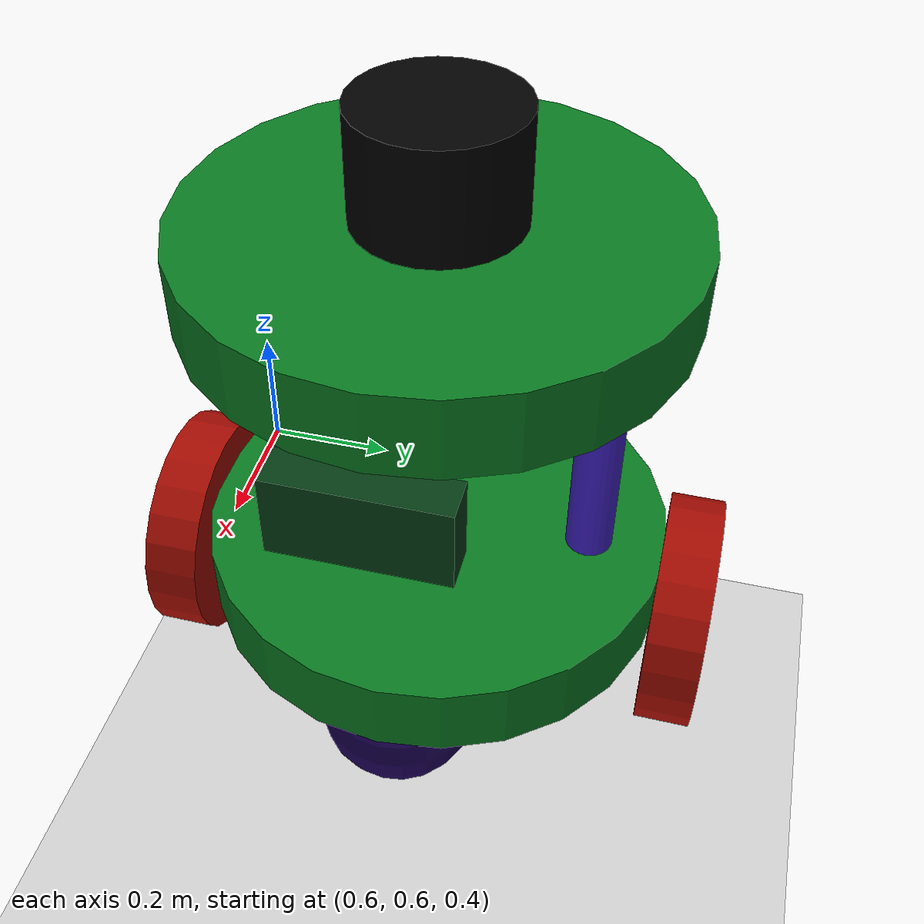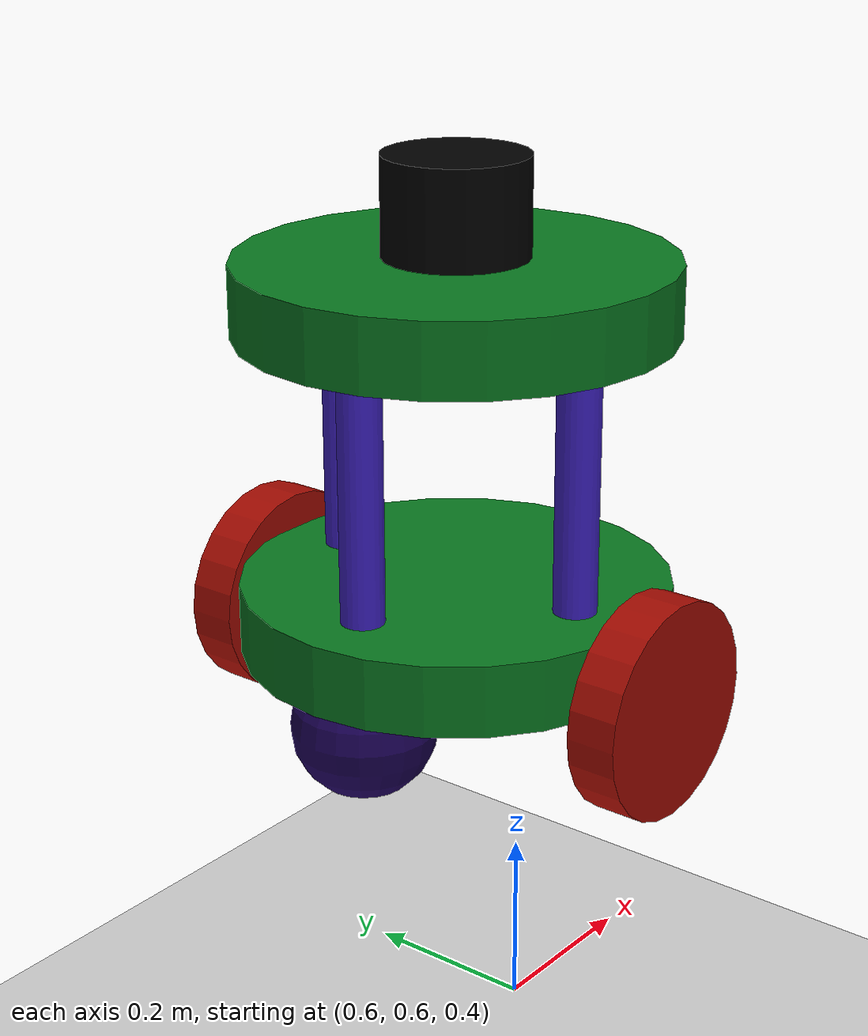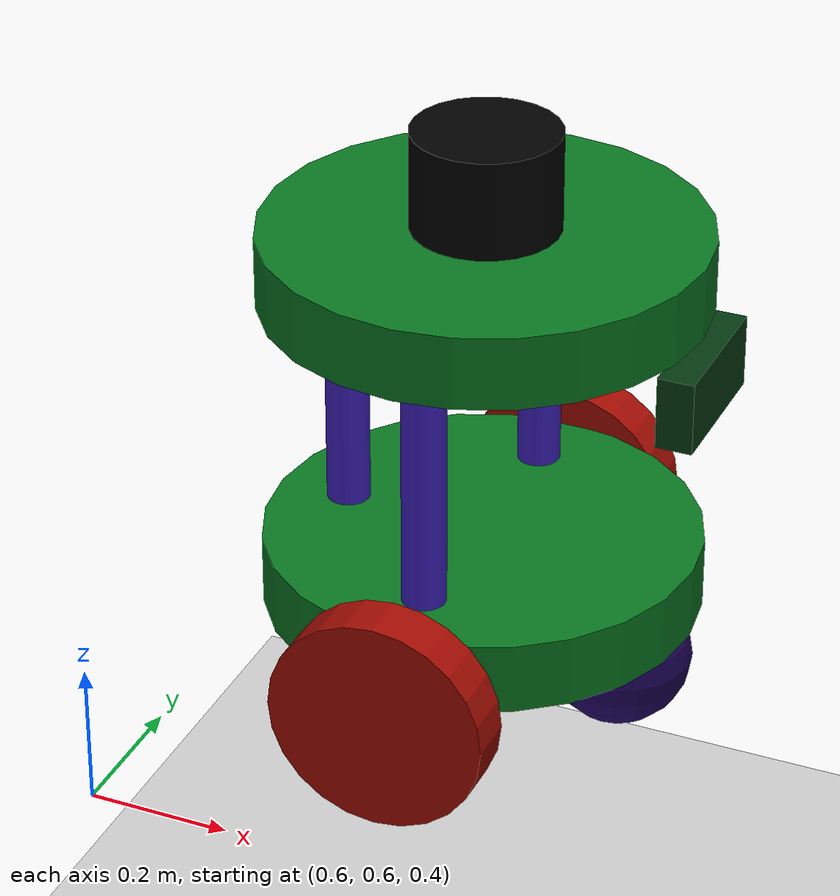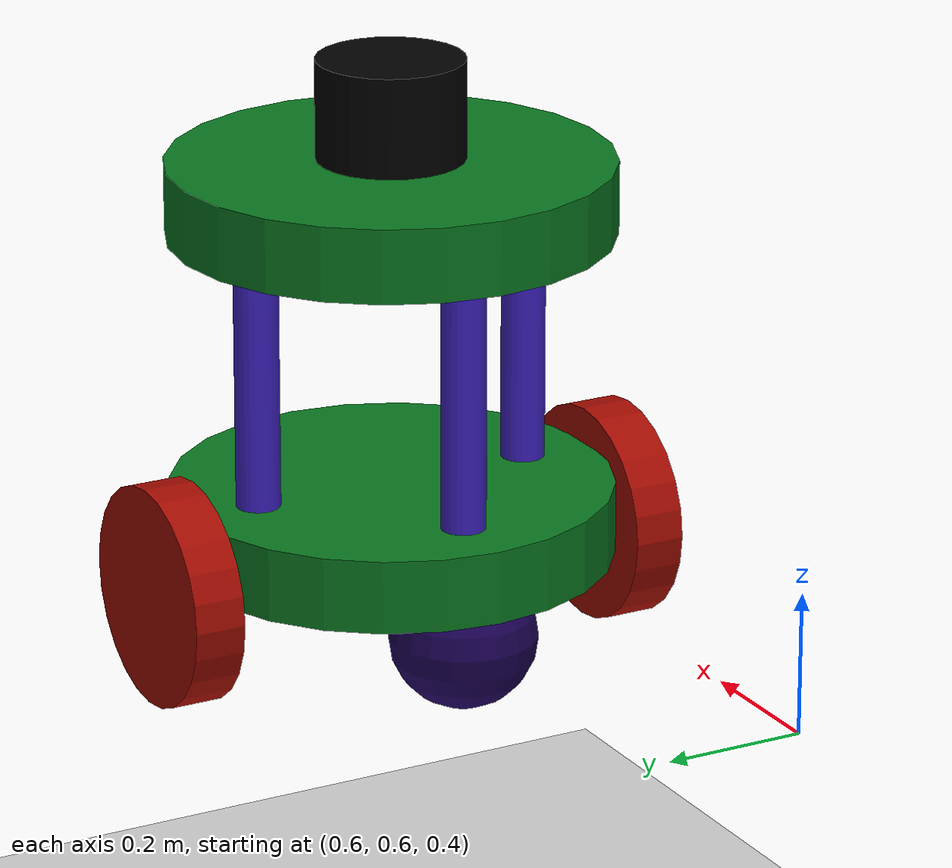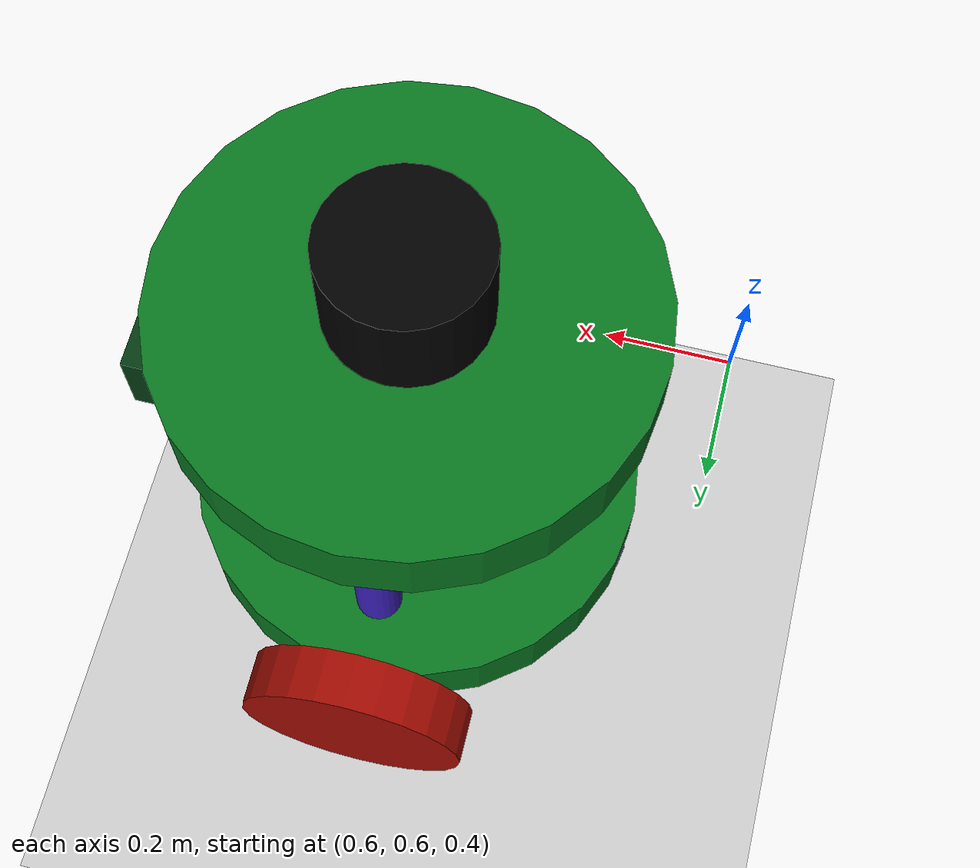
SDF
<?xml version="1.0" ?>
<sdf version="1.10">

    <world name="beetlebot_world">

        <physics name="1ms" type="ignored">
            <max_step_size>0.001</max_step_size>
            <real_time_factor>1.0</real_time_factor>
        </physics>

        <plugin
            filename="gz-sim-physics-system"
            name="gz::sim::systems::Physics">
        </plugin>

        <plugin
            filename="gz-sim-user-commands-system"
            name="gz::sim::systems::UserCommands">
        </plugin>

        <plugin
            filename="gz-sim-scene-broadcaster-system"
            name="gz::sim::systems::SceneBroadcaster">
        </plugin>

    <!-- define custom gui plugins to the world -->

    <!-- add robot sensors plugins to the world -->

        <!-- add imu plugin to the world -->
        <plugin filename="gz-sim-imu-system"
            name="gz::sim::systems::Imu">
        </plugin>

         <!-- add lidar plugin to the world -->
        <plugin
            filename="gz-sim-sensors-system"
            name="gz::sim::systems::Sensors">
            <render_engine>ogre2</render_engine>
        </plugin>

        <light type="directional" name="sun">
            <cast_shadows>true</cast_shadows>
            <pose>0 0 10 0 0 0</pose>
            <diffuse>0.8 0.8 0.8 1</diffuse>
            <specular>0.2 0.2 0.2 1</specular>
            <attenuation>
                <range>1000</range>
                <constant>0.9</constant>
                <linear>0.01</linear>
                <quadratic>0.001</quadratic>
            </attenuation>
            <direction>-0.5 0.1 -0.9</direction>
        </light>

        <model name="ground_plane">
            <static>true</static>
            <link name="link">
                <collision name="collision">
                    <geometry>
                        <plane>
                            <normal>0 0 1</normal>
                            <size>100 100</size>
                        </plane>
                    </geometry>
                    <surface>
                        <friction>
                            <ode>
                                <mu>100</mu>
                                <mu2>50</mu2>
                            </ode>
                        </friction>
                    </surface>
                </collision>
                <visual name="visual">
                    <cast_shadows>false</cast_shadows>
                    <geometry>
                        <plane>
                            <normal>0 0 1</normal>
                            <size>100 100</size>
                        </plane>
                    </geometry>
                    <material>
                        <script>
                            <uri>file://media/materials/scripts/gazebo.material</uri>
                            <name>Gazebo/Grey</name>
                        </script>
                    </material>
                </visual>
            </link>
        </model>

        <!--  movment plugins to control robot using gzsim teleop with keyboard (No ROS) -->

        <!-- Moving Forward-->
        <plugin filename="gz-sim-triggered-publisher-system"
                name="gz::sim::systems::TriggeredPublisher">
            <input type="gz.msgs.Int32" topic="/keyboard/keypress">
                <match field="data">16777235</match>
            </input>
            <output type="gz.msgs.Twist" topic="/cmd_vel">
                linear: {x: 0.5}, angular: {z: 0.0}
            </output>
        </plugin>

        <!-- Moving Backward-->
        <plugin filename="gz-sim-triggered-publisher-system"
                name="gz::sim::systems::TriggeredPublisher">
            <input type="gz.msgs.Int32" topic="/keyboard/keypress">
                <match field="data">16777237</match>
            </input>
            <output type="gz.msgs.Twist" topic="/cmd_vel">
                linear: {x: -0.5}, angular: {z: 0.0}
            </output>
        </plugin>

        <!-- Moving Right-->
        <plugin filename="gz-sim-triggered-publisher-system"
                name="gz::sim::systems::TriggeredPublisher">
            <input type="gz.msgs.Int32" topic="/keyboard/keypress">
                <match field="data">16777236</match>
            </input>
            <output type="gz.msgs.Twist" topic="/cmd_vel">
                linear: {x: 0.0}, angular: {z: -0.5}
            </output>
        </plugin>

        <!-- Moving Left-->
        <plugin filename="gz-sim-triggered-publisher-system"
                name="gz::sim::systems::TriggeredPublisher">
            <input type="gz.msgs.Int32" topic="/keyboard/keypress">
                <match field="data">16777234</match>
            </input>
            <output type="gz.msgs.Twist" topic="/cmd_vel">
                linear: {x: 0.0}, angular: {z: 0.5}
            </output>
        </plugin>

        <!-- Stop the robot-->
        <plugin filename="gz-sim-triggered-publisher-system"
                name="gz::sim::systems::TriggeredPublisher">
            <input type="gz.msgs.Int32" topic="/keyboard/keypress">
                <match field="data">75</match>
            </input>
            <output type="gz.msgs.Twist" topic="/cmd_vel">
                linear: {x: 0.0}, angular: {z: 0.0}
            </output>
        </plugin>

        <!-- Include a "beetlebot" robot inside beetlebot_1 model as nested model  -->

        <model name="beetlebot_1">

            <self_collide>true</self_collide>
            <pose>1 1 0.35 0 0 0</pose>
            <include >
                <uri>filename://beetlebot/model.sdf</uri>
            </include>

        </model>

    </world>
</sdf>

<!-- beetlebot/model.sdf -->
<sdf version="1.8">
        <model name="beetlebot" >
            <link name="beetlebot">
                <pose relative_to='__model__'>0 0 0.0 0 0 0</pose>
            </link>

            <joint name="footprint_to_base" type="fixed">
                <parent>beetlebot</parent>
                <child>base_link</child>
            </joint>

            <link name="base_link">
                <pose relative_to='beetlebot'>0 0 0.3 0 0 0</pose>
                <visual name='base_link visual'>
                    <pose>0 0 0 0 0 0</pose>
                    <geometry>
                        <cylinder>
                            <radius>0.3</radius>
                            <length>0.1</length>
                        </cylinder>
                    </geometry>
                    <material>
                        <ambient>0.033104766565152086 0.46778379610254284 0.12477181755144427 1</ambient>
                        <diffuse>0.033104766565152086 0.46778379610254284 0.12477181755144427 1</diffuse>
                        <specular>0.1 0.1 0.1 1</specular>
                        <emissive>0 0 0 1</emissive>
                    </material>
                </visual>
                <collision name='base_link collision'>
                    <pose>0 0 0 0 0 0</pose>
                    <geometry>
                        <cylinder>
                            <radius>0.3</radius>
                            <length>0.1</length>
                        </cylinder>
                    </geometry>
                </collision>
                <inertial>
                    <mass>1</mass>
                    <inertia>
                        <ixx>0.3333333333333333</ixx>
                        <ixy>0</ixy>
                        <ixz>0</ixz>
                        <iyy>0.5</iyy>
                        <iyz>0</iyz>
                        <izz>0.3333333333333333</izz>
                    </inertia>
                </inertial>
            </link>

            <!-- right wheel link -->
            <link name="wheel_right">
                <pose relative_to='base_link'>-0.0 -0.33 -0.05 1.5707963267948963 0 0</pose>
                <visual name='wheel_right visual'>
                    <pose>0 0 0 0 0 0</pose>
                    <geometry>
                        <cylinder>
                            <radius>0.15</radius>
                            <length>0.07</length>
                        </cylinder>
                    </geometry>
                    <material>
                        <ambient>0.6375968739867731 0.04373502925049377 0.008023192982520563 1</ambient>
                        <diffuse>0.6375968739867731 0.04373502925049377 0.008023192982520563 1</diffuse>
                        <specular>0.1 0.1 0.1 1</specular>
                        <emissive>0 0 0 1</emissive>
                    </material>
                </visual>
                <collision name='wheel_right collision'>
                    <pose>0 0 0 0 0 0</pose>
                    <geometry>
                        <cylinder>
                            <radius>0.15</radius>
                            <length>0.07</length>
                        </cylinder>
                    </geometry>
                </collision>
                <inertial>
                    <mass>1</mass>
                    <inertia>
                        <ixx>0.3333333333333333</ixx>
                        <ixy>0</ixy>
                        <ixz>0</ixz>
                        <iyy>0.5</iyy>
                        <iyz>0</iyz>
                        <izz>0.3333333333333333</izz>
                    </inertia>
                </inertial>
            </link>

            <!-- right wheel joint -->
            <joint name="base_link_to_wheel_right" type="revolute">
                <parent>base_link</parent>
                <child>wheel_right</child>
                <axis>
                    <xyz expressed_in='__model__'>0 1 0</xyz>
                    <limit>
                        <lower>-1.79769e+308</lower>
                        <upper>1.79769e+308</upper>
                    </limit>
                </axis>
            </joint>

            <!-- left wheel link -->
            <link name="wheel_left">
                <pose relative_to='base_link'>0 0.33 -0.05 1.5707963267948963 0 0</pose>
                <visual name='wheel_left visual'>
                    <pose>0 0 0 0 0 0</pose>
                    <geometry>
                        <cylinder>
                            <radius>0.15</radius>
                            <length>0.07</length>
                        </cylinder>
                    </geometry>
                    <material>
                        <ambient>0.6375968739867731 0.04373502925049377 0.008023192982520563 1</ambient>
                        <diffuse>0.6375968739867731 0.04373502925049377 0.008023192982520563 1</diffuse>
                        <specular>0.1 0.1 0.1 1</specular>
                        <emissive>0 0 0 1</emissive>
                    </material>
                </visual>
                <collision name='wheel_left collision'>
                    <pose>0 0 0 0 0 0</pose>
                    <geometry>
                        <cylinder>
                            <radius>0.15</radius>
                            <length>0.07</length>
                        </cylinder>
                    </geometry>
                </collision>
                <inertial>
                    <mass>1</mass>
                    <inertia>
                        <ixx>0.3333333333333333</ixx>
                        <ixy>0</ixy>
                        <ixz>0</ixz>
                        <iyy>0.5</iyy>
                        <iyz>0</iyz>
                        <izz>0.3333333333333333</izz>
                    </inertia>
                </inertial>
            </link>

            <!-- left wheel joint -->
            <joint name="base_link_to_wheel_left" type="revolute">
                <parent>base_link</parent>
                <child>wheel_left</child>
                <axis>
                    <xyz expressed_in='__model__'>0 1 0</xyz>  <!-- axis of rotation have to be expressed_in model -->
                    <limit>
                        <lower>-1.79769e+308</lower>    <!--negative infinity-->
                        <upper>1.79769e+308</upper>     <!--positive infinity-->
                    </limit>
                </axis>
            </joint>

                <!-- top_base link -->

            <link name="top_base">
                <!-- Pose relative to base_link -->
                <pose relative_to='base_link'>0 0 0.45 0 0 0</pose>

                <!-- Visual representation of top_base -->
                <visual name='top_base visual'>
                    <pose>0 0 0 0 0 0</pose>
                    <geometry>
                        <cylinder>
                            <radius>0.3</radius>
                            <length>0.1</length>
                        </cylinder>
                    </geometry>
                    <material>
                        <ambient>0.033104766565152086 0.46778379610254284 0.12477181755144427 1</ambient>
                        <diffuse>0.033104766565152086 0.46778379610254284 0.12477181755144427 1</diffuse>
                        <specular>0.1 0.1 0.1 1</specular>
                        <emissive>0 0 0 1</emissive>
                    </material>
                </visual>

                <!-- Collision properties for top_base -->
                <collision name='top_base collision'>
                    <pose>0 0 0 0 0 0</pose>
                    <geometry>
                        <cylinder>
                            <radius>0.3</radius>
                            <length>0.1</length>
                        </cylinder>
                    </geometry>
                </collision>

                <!-- Inertial properties of top_base -->
                <inertial>
                    <mass>1</mass>
                    <inertia>
                        <ixx>0.3333333333333333</ixx>
                        <ixy>0</ixy>
                        <ixz>0</ixz>
                        <iyy>0.5</iyy>
                        <iyz>0</iyz>
                        <izz>0.3333333333333333</izz>
                    </inertia>
                </inertial>
            </link>

            <!-- top_base joint -->
            <joint name="base_link_to_top_base" type="fixed">
                <parent>base_link</parent>
                <child>top_base</child>
            </joint>

            <frame name="front_caster_frame" attached_to='base_link'>
                <pose>0.2 0 -0.1 0 0 0</pose>
            </frame>

            <!-- front_caster link -->
            <link name="front_caster">

                <pose relative_to='front_caster_frame'/>  <!-- pose relative to front_caster_frame -->
                <!-- Visual representation of front_caster -->
                <visual name='front_caster visual'>
                    <pose>0 0 0 0 0 0</pose>
                    <geometry>
                        <sphere>
                            <radius>0.1</radius>
                        </sphere>
                    </geometry>
                    <material>
                        <ambient>0.10702310296918527 0.0069954101845983935 0.3371636150376657 1</ambient>
                        <diffuse>0.10702310296918527 0.0069954101845983935 0.3371636150376657 1</diffuse>
                        <specular>0.1 0.1 0.1 1</specular>
                        <emissive>0 0 0 1</emissive>
                    </material>
                </visual>

                <!-- Collision properties for front_caster -->
                <collision name='front_caster collision'>
                    <pose>0 0 0 0 0 0</pose>
                    <geometry>
                        <sphere>
                            <radius>0.1</radius>
                        </sphere>
                    </geometry>
                </collision>

                <!-- Inertial properties of front_caster -->
                <inertial>
                    <mass>1</mass>
                    <inertia>
                        <ixx>0.4</ixx>
                        <ixy>0</ixy>
                        <ixz>0</ixz>
                        <iyy>0.4</iyy>
                        <iyz>0</iyz>
                        <izz>0.4</izz>
                    </inertia>
                </inertial>
            </link>

            <!-- front_caster joint -->
            <joint name="base_link_to_front_caster" type="ball">
                <parent>base_link</parent>
                <child>front_caster</child>
            </joint>

            <!-- rear_caster link -->
            <link name="rear_caster">
                <!-- Pose relative to base_link -->
                <pose relative_to='base_link'>-0.2 0 -0.1 0 0 0</pose>

                <!-- Visual representation of rear_caster -->
                <visual name='rear_caster visual'>
                    <pose>0 0 0 0 0 0</pose>
                    <geometry>
                        <sphere>
                            <radius>0.1</radius>
                        </sphere>
                    </geometry>
                    <material>
                        <ambient>0.10702310296918527 0.0069954101845983935 0.3371636150376657 1</ambient>
                        <diffuse>0.10702310296918527 0.0069954101845983935 0.3371636150376657 1</diffuse>
                        <specular>0.1 0.1 0.1 1</specular>
                        <emissive>0 0 0 1</emissive>
                    </material>
                </visual>

                <!-- Collision properties for rear_caster -->
                <collision name='rear_caster collision'>
                    <pose>0 0 0 0 0 0</pose>
                    <geometry>
                        <sphere>
                            <radius>0.1</radius>
                        </sphere>
                    </geometry>
                </collision>

                <!-- Inertial properties of rear_caster -->
                <inertial>
                    <mass>1</mass>
                    <inertia>
                        <ixx>0.4</ixx>
                        <ixy>0</ixy>
                        <ixz>0</ixz>
                        <iyy>0.4</iyy>
                        <iyz>0</iyz>
                        <izz>0.4</izz>
                    </inertia>
                </inertial>
            </link>

            <!-- rear_caster joint -->
            <joint name="base_link_to_rear_caster" type="ball">
                <parent>base_link</parent>
                <child>rear_caster</child>
            </joint>

            <!-- right_bar link -->
            <link name="right_bar">
                <!-- Pose relative to base_link -->
                <pose relative_to='base_link'>0 0.2 0.2058808723746403 0 0 0</pose>

                <!-- Visual representation of right_bar -->
                <visual name='right_bar visual'>
                    <pose>0 0 0 0 0 0</pose>
                    <geometry>
                        <cylinder>
                            <radius>0.03</radius>
                            <length>0.5</length>
                        </cylinder>
                    </geometry>
                    <material>
                        <ambient>0.23839757380151394 0.12743768042608497 0.7529422167708612 1</ambient>
                        <diffuse>0.23839757380151394 0.12743768042608497 0.7529422167708612 1</diffuse>
                        <specular>0.1 0.1 0.1 1</specular>
                        <emissive>0 0 0 1</emissive>
                    </material>
                </visual>

                <!-- Collision properties for right_bar -->
                <collision name='right_bar collision'>
                    <pose>0 0 0 0 0 0</pose>
                    <geometry>
                        <cylinder>
                            <radius>0.03</radius>
                            <length>0.5</length>
                        </cylinder>
                    </geometry>
                </collision>

                <!-- Inertial properties of right_bar -->
                <inertial>
                    <mass>1</mass>
                    <inertia>
                        <ixx>0.3333333333333333</ixx>
                        <ixy>0</ixy>
                        <ixz>0</ixz>
                        <iyy>0.5</iyy>
                        <iyz>0</iyz>
                        <izz>0.3333333333333333</izz>
                    </inertia>
                </inertial>
            </link>

            <!-- right_bar joint -->
            <joint name="base_link_to_right_bar" type="fixed">
                <parent>base_link</parent>
                <child>right_bar</child>
            </joint>

            <!-- left_bar link -->

            <link name="left_bar">
                <!-- Pose relative to base_link -->
                <pose relative_to='base_link'>0 -0.2 0.2058808723746403 0 0 0</pose>

                <!-- Visual representation of left_bar -->
                <visual name='left_bar visual'>
                    <pose>0 0 0 0 0 0</pose>
                    <geometry>
                        <cylinder>
                            <radius>0.03</radius>
                            <length>0.5</length>
                        </cylinder>
                    </geometry>
                    <material>
                        <ambient>0.23839757380151394 0.12743768042608497 0.7529422167708612 1</ambient>
                        <diffuse>0.23839757380151394 0.12743768042608497 0.7529422167708612 1</diffuse>
                        <specular>0.1 0.1 0.1 1</specular>
                        <emissive>0 0 0 1</emissive>
                    </material>
                </visual>

                <!-- Collision properties for left_bar -->
                <collision name='left_bar collision'>
                    <pose>0 0 0 0 0 0</pose>
                    <geometry>
                        <cylinder>
                            <radius>0.03</radius>
                            <length>0.5</length>
                        </cylinder>
                    </geometry>
                </collision>

                <!-- Inertial properties of left_bar -->
                <inertial>
                    <mass>1</mass>
                    <inertia>
                        <ixx>0.3333333333333333</ixx>
                        <ixy>0</ixy>
                        <ixz>0</ixz>
                        <iyy>0.5</iyy>
                        <iyz>0</iyz>
                        <izz>0.3333333333333333</izz>
                    </inertia>
                </inertial>

            </link>

            <!-- left_bar joint -->

            <joint name="base_link_to_left_bar" type="fixed">
                <parent>base_link</parent>
                <child>left_bar</child>
            </joint>

            <!-- rear_bar link -->
            <link name="rear_bar">
                <!-- Pose relative to base_link -->
                <pose relative_to='base_link'> -0.2 0 0.2058808723746403 0 0 0</pose>

                <!-- Visual representation of rear_bar -->
                <visual name='rear_bar visual'>
                    <pose>0 0 0 0 0 0</pose>
                    <geometry>
                        <cylinder>
                            <radius>0.03</radius>
                            <length>0.5</length>
                        </cylinder>
                    </geometry>
                    <material>
                        <ambient>0.23839757380151394 0.12743768042608497 0.7529422167708612 1</ambient>
                        <diffuse>0.23839757380151394 0.12743768042608497 0.7529422167708612 1</diffuse>
                        <specular>0.1 0.1 0.1 1</specular>
                        <emissive>0 0 0 1</emissive>
                    </material>
                </visual>

                <!-- Collision properties for rear_bar -->
                <collision name='rear_bar collision'>
                    <pose>0 0 0 0 0 0</pose>
                    <geometry>
                        <cylinder>
                            <radius>0.03</radius>
                            <length>0.5</length>
                        </cylinder>
                    </geometry>
                </collision>

                <!-- Inertial properties of rear_bar -->
                <inertial>
                    <mass>1</mass>
                    <inertia>
                        <ixx>0.3333333333333333</ixx>
                        <ixy>0</ixy>
                        <ixz>0</ixz>
                        <iyy>0.5</iyy>
                        <iyz>0</iyz>
                        <izz>0.3333333333333333</izz>
                    </inertia>
                </inertial>
            </link>

            <!-- rear_bar joint -->
            <joint name="base_link_to_rear_bar" type="fixed">
                <parent>base_link</parent>
                <child>rear_bar</child>
            </joint>

            <link name="lidar">
                <pose relative_to='base_link'>0 0 0.57 0 0 0</pose>
                <visual name='lidar visual'>
                    <pose>0 0 0 0 0 0</pose>
                    <geometry>
                        <cylinder>
                            <radius>0.1</radius>
                            <length>0.13538975482266932</length>
                        </cylinder>
                    </geometry>
                    <material>
                        <ambient>0 0 0 1</ambient>
                        <diffuse>0 0 0 1</diffuse>
                        <specular>0.1 0.1 0.1 1</specular>
                        <emissive>0 0 0 1</emissive>
                    </material>
                </visual>
                <collision name='lidar collision'>
                    <pose>0 0 0 0 0 0</pose>
                    <geometry>
                        <cylinder>
                            <radius>0.1</radius>
                            <length>0.13538975482266932</length>
                        </cylinder>
                    </geometry>
                </collision>
                <inertial>
                    <mass>1</mass>
                    <inertia>
                        <ixx>0.3333333333333333</ixx>
                        <ixy>0</ixy>
                        <ixz>0</ixz>
                        <iyy>0.5</iyy>
                        <iyz>0</iyz>
                        <izz>0.3333333333333333</izz>
                    </inertia>
                </inertial>
                <sensor name='rp_lidar' type='gpu_lidar'>"
                    <pose relative_to='lidar'>0 0 0 0 0 0</pose>
                    <always_on>1</always_on>
                    <visualize>true</visualize>
                    <topic>lidar</topic>
                    <gz_frame_id>beetlebot/lidar</gz_frame_id>
                    <update_rate>10</update_rate>
                    <ray>
                        <scan>
                            <horizontal>
                                <samples>640</samples>
                                <resolution>1</resolution>
                                <min_angle>-6.28319</min_angle>
                                <max_angle>6.28319</max_angle>
                            </horizontal>
                            <vertical>
                                <samples>1</samples>
                                <resolution>0.01</resolution>
                                <min_angle>0</min_angle>
                                <max_angle>0</max_angle>
                            </vertical>
                        </scan>
                        <range>
                            <min>0.08</min>
                            <max>10.0</max>
                            <resolution>0.01</resolution>
                        </range>
                    </ray>
                </sensor>
            </link>

            <joint name="base_link_to_lidar" type="fixed">
                <parent>base_link</parent>
                <child>lidar</child>
            </joint>

            <link name="camera">
                <pose relative_to='base_link'>0.3 0 0.34 0 0 0</pose>
                <visual name='camera visual'>
                    <pose>0 0 0 0 0 0</pose>
                    <geometry>
                        <box>
                            <size>0.05 0.2 0.1</size>
                        </box>
                    </geometry>
                    <material>
                        <ambient>0.015996293361446288 0.22696587349938613 0.07036009568874305 1</ambient>
                        <diffuse>0.015996293361446288 0.22696587349938613 0.07036009568874305 1</diffuse>
                        <specular>0.1 0.1 0.1 1</specular>
                        <emissive>0 0 0 1</emissive>
                    </material>
                </visual>
                <collision name='camera collision'>
                    <pose>0.0 0 0 0.0 0 0</pose>
                    <geometry>
                        <box>
                            <size>0.05 0.2 0.1</size>
                        </box>
                    </geometry>
                </collision>
                <inertial>
                    <mass>1</mass>
                    <inertia>
                        <ixx>0.16666666666666666</ixx>
                        <ixy>0</ixy>
                        <ixz>0</ixz>
                        <iyy>0.16666666666666666</iyy>
                        <iyz>0</iyz>
                        <izz>0.16666666666666666</izz>
                    </inertia>
                </inertial>
                <sensor name="camera" type="camera">
                    <always_on>true</always_on>
                    <visualize>true</visualize>
                    <update_rate>30</update_rate>
                    <topic>camera/image_raw</topic>
                    <gz_frame_id>beetlebot/camera</gz_frame_id>
                    <camera name="intel_realsense_r200">
                    <camera_info_topic>camera/camera_info</camera_info_topic>
                    <horizontal_fov>1.02974</horizontal_fov>
                    <image>
                        <width>1920</width>
                        <height>1080</height>
                        <format>R8G8B8</format>
                    </image>
                    <clip>
                        <near>0.02</near>
                        <far>300</far>
                    </clip>
                    <noise>
                        <type>gaussian</type>
                        <mean>0.0</mean>
                        <stddev>0.007</stddev>
                    </noise>
                    </camera>
                </sensor>

                <sensor name="depth_camera" type="depth">
                    <always_on>true</always_on>
                    <visualize>true</visualize>
                    <update_rate>30</update_rate>
                    <topic>camera/depth/image_raw</topic>
                    <gz_frame_id>beetlebot/camera</gz_frame_id>
                    <depth_camera name="intel_realsense_r200">
                        <camera_info_topic>camera/depth/camera_info</camera_info_topic>
                        <horizontal_fov>1.02974</horizontal_fov>
                        <image>
                            <width>1920</width>
                            <height>1080</height>
                            <format>R8G8B8</format>
                        </image>
                        <clip>
                            <near>0.02</near>
                            <far>300</far>
                        </clip>
                        <noise>
                            <type>gaussian</type>
                            <mean>0.0</mean>
                            <stddev>0.007</stddev>
                        </noise>
                    </depth_camera>
                </sensor>
            </link>

            <joint name="base_link_to_camera" type="revolute">
                <pose relative_to='camera'>0 0 0 0 0 0</pose>
                <parent>base_link</parent>
                <child>camera</child>
                <axis>
                    <xyz expressed_in='__model__'>0 1 0</xyz>
                    <limit>
                        <lower>-1.14</lower>
                        <upper>1.14</upper>
                    </limit>
                </axis>
            </joint>

            <plugin
                filename="gz-sim-joint-position-controller-system"
                name="gz::sim::systems::JointPositionController">
                <joint_name>base_link_to_camera</joint_name>
                <topic>camera_angle</topic>
                <p_gain>0.07</p_gain>
                <i_gain>0.001</i_gain>
                <d_gain>0.2</d_gain>
                <i_max>1</i_max>
                <i_min>-1</i_min>
                <cmd_max>1</cmd_max>
                <cmd_min>-1</cmd_min>
            </plugin>

        <!-- include external camera model with sensor  -->

            <!-- add DiffDrive plugin to control the robot
            ref: https://gazebosim.org/api/sim/8/classgz_1_1sim_1_1systems_1_1DiffDrive.html -->

            <plugin filename="gz-sim-diff-drive-system"
                    name="gz::sim::systems::DiffDrive">
                    <left_joint>base_link_to_wheel_left</left_joint>
                    <right_joint>base_link_to_wheel_right</right_joint>
                    <wheel_separation>0.6</wheel_separation>
                    <wheel_radius>0.15</wheel_radius>
                    <odom_publish_frequency>100</odom_publish_frequency>
                    <max_linear_acceleration>1</max_linear_acceleration>
                    <min_linear_acceleration>-1</min_linear_acceleration>
                    <max_angular_acceleration>2</max_angular_acceleration>
                    <min_angular_acceleration>-2</min_angular_acceleration>
                    <max_linear_velocity>1</max_linear_velocity>
                    <min_linear_velocity>-1</min_linear_velocity>
                    <max_angular_velocity>4</max_angular_velocity>
                    <min_angular_velocity>-4</min_angular_velocity>
                    <topic>cmd_vel</topic>
                    <publish_wheel_tf>false</publish_wheel_tf>

            </plugin>

            <!--  add OdometryPublisher plugin to publish odometry instedad of diff-drive plugin
            ref: https://gazebosim.org/api/sim/8/classgz_1_1sim_1_1systems_1_1OdometryPublisher.html -->

            <plugin filename="gz-sim-odometry-publisher-system"
                name="gz::sim::systems::OdometryPublisher">
                <odom_topic>odom</odom_topic>
                <odom_covariance_topic>odom_covariance</odom_covariance_topic>
                <odom_frame>beetlebot/odom</odom_frame>
                <robot_base_frame>beetlebot</robot_base_frame>
            </plugin>

            <!-- add PosePublisher plugin to publish pose of the robot
            ref: https://gazebosim.org/api/sim/8/classgz_1_1sim_1_1systems_1_1PosePublisher.html -->

            <plugin filename="gz-sim-pose-publisher-system"
                name="gz::sim::systems::PosePublisher">
                <publish_link_pose>true</publish_link_pose>
                <use_pose_vector_msg>true</use_pose_vector_msg>
                <static_publisher>true</static_publisher>
                <static_update_frequency>1</static_update_frequency>
            </plugin>

            <!-- add JointStatePublisher plugin to publish joint states of the robot
            ref: https://gazebosim.org/api/sim/8/classgz_1_1sim_1_1systems_1_1JointStatePublisher.html -->

            <plugin filename="gz-sim-joint-state-publisher-system"
                name="gz::sim::systems::JointStatePublisher">
                <topic>joint_states</topic>
                <joint_name>base_link_to_wheel_left</joint_name>
                <joint_name>base_link_to_wheel_right</joint_name>

            </plugin>

        </model>

    </sdf>
